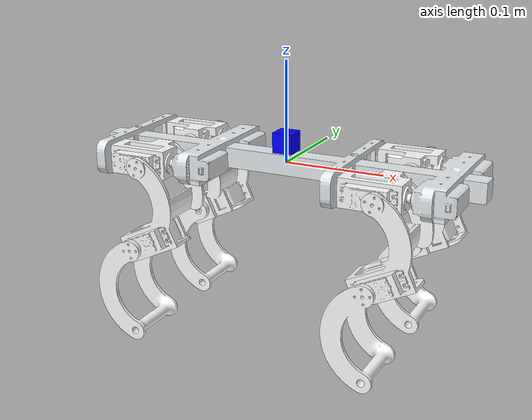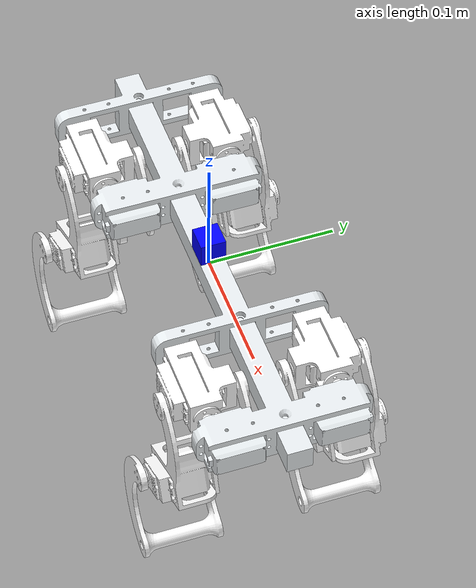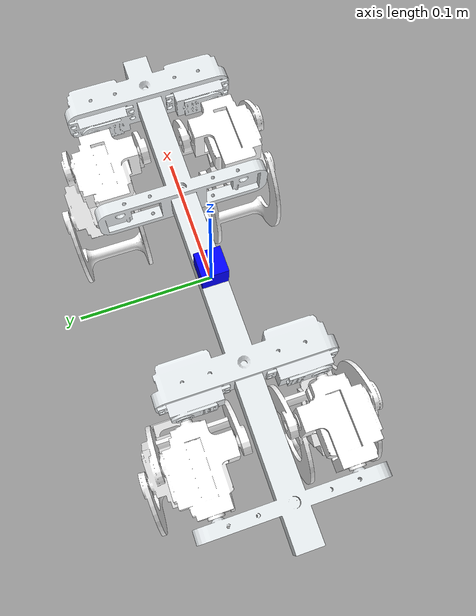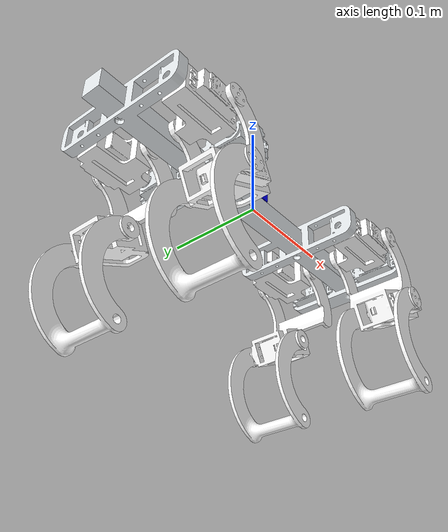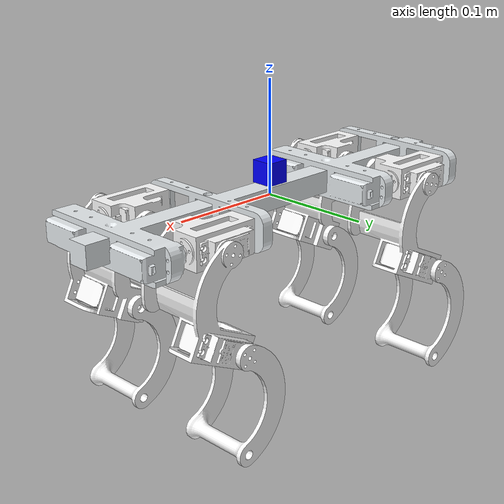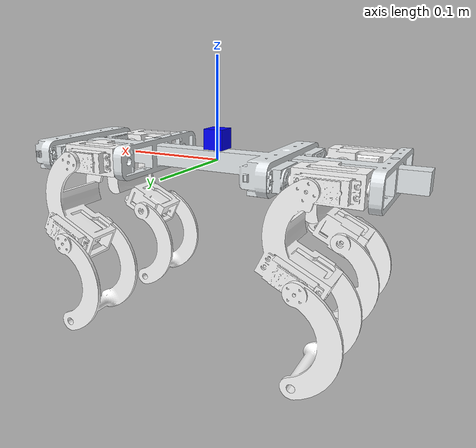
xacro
<?xml version="1.0"?>
<robot xmlns:xacro="http://ros.org/wiki/xacro" name="tinyquad">

  <xacro:include filename="$(find tinyquad_description)/urdf/tinyquad_frame.urdf.xacro" />
  <xacro:include filename="$(find tinyquad_description)/urdf/tinyquad_transmission.xacro" />
  <xacro:include filename="$(find tinyquad_description)/urdf/tinyquad_sensors.urdf.xacro" />
  <xacro:include filename="$(find tinyquad_description)/urdf/tinyquad_wheel.xacro" />

  <xacro:tinyquad />

  <xacro:tinyquad_transmission name="LFS"/>
  <xacro:tinyquad_transmission name="LFU"/>
  <xacro:tinyquad_transmission name="LFL"/>

  <xacro:tinyquad_transmission name="RFS"/>
  <xacro:tinyquad_transmission name="RFU"/>
  <xacro:tinyquad_transmission name="RFL"/>

  <xacro:tinyquad_transmission name="LBS"/>
  <xacro:tinyquad_transmission name="LBU"/>
  <xacro:tinyquad_transmission name="LBL"/>

  <xacro:tinyquad_transmission name="RBS"/>
  <xacro:tinyquad_transmission name="RBU"/>
  <xacro:tinyquad_transmission name="RBL"/>

  <gazebo>
      <plugin name="gazebo_ros_control" filename="libgazebo_ros_control.so">
        <robotNamespace>/tinyquad</robotNamespace>
      </plugin>
  </gazebo>

  <gazebo reference="imu_link">
    <gravity>true</gravity>
    <sensor name="imu_sensor" type="imu">
      <always_on>true</always_on>
      <update_rate>100</update_rate>
      <visualize>true</visualize>
      <plugin filename="libgazebo_ros_imu_sensor.so" name="imu_plugin">
        <topicName>/tinyquad/imu</topicName>
        <bodyName>imu_link</bodyName>
        <updateRateHZ>10.0</updateRateHZ>
        <gaussianNoise>0.0</gaussianNoise>
        <xyzOffset>0 0 0</xyzOffset>
        <rpyOffset>0 0 0</rpyOffset>
        <frameName>imu_link</frameName>
        <initialOrientationAsReference>false</initialOrientationAsReference>
      </plugin>
      <pose>0 0 0 0 0 0</pose>
    </sensor>
  </gazebo>

</robot>

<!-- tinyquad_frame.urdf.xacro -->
<robot xmlns:xacro="http://ros.org/wiki/xacro" >
  <xacro:include filename="$(find tinyquad_description)/urdf/tinyquad_leg.xacro" />

  <xacro:macro name="tinyquad">
    <link name="base_footprint" >
      <origin xyz="0.0103120639734149 3.57028601323102E-12 -5.09987831894361E-06" rpy="0 0 0"/>
    </link>
    <link
      name="base_link">
      <inertial>
        <origin
          xyz="0.0103120639734149 3.57028601323102E-12 -5.09987831894361E-06"
          rpy="0 0 0" />
        <mass
          value="0.673746391598589" />
        <inertia
          ixx="0.000240394302807336"
          ixy="4.72346918508225E-15"
          ixz="1.34348270128604E-09"
          iyy="0.00581273765980766"
          iyz="5.80749294518212E-10"
          izz="0.00598610621622578" />
      </inertial>
      <visual>
        <origin
          xyz="0 0 0"
          rpy="0 0 0" />
        <geometry>
          <mesh
            filename="package://tinyquad_description/meshes/base_link.STL" />
        </geometry>
        <material
          name="">
          <color
            rgba="0.898039215686275 0.917647058823529 0.929411764705882 1" />
        </material>
      </visual>
      <collision>
        <origin
          xyz="0 0 0"
          rpy="0 0 0" />
        <geometry>
          <mesh
            filename="package://tinyquad_description/meshes/base_link.STL" />
        </geometry>
      </collision>
    </link>
    <joint name="base_joint" type="fixed" >
      <origin xyz="0 0 0" rpy="0 0 0" />
      <parent link="base_footprint" />
      <child link="base_link" />
    </joint>

    <xacro:leg pose_prefix="LF" x_mirror="1" y_mirror="1" x_offset="0.15711"/>
    <xacro:leg pose_prefix="RF" x_mirror="1" y_mirror="-1" x_offset="0.15711"/>
    <xacro:leg pose_prefix="LB" x_mirror="1" y_mirror="1" x_offset="-0.082893"/>
    <xacro:leg pose_prefix="RB" x_mirror="1" y_mirror="-1" x_offset="-0.082893"/>

  </xacro:macro>

</robot>

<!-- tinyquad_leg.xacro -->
<robot xmlns:xacro="http://ros.org/wiki/xacro">

  <xacro:macro name="leg" params="pose_prefix x_mirror y_mirror x_offset">
    <link name="${pose_prefix}S_L">
        <inertial>
        <origin
            xyz="-0.046748 ${y_mirror*-0.00092972} 6.6559E-07"
            rpy="0 0 0" />
        <mass
            value="0.057684" />
        <inertia
            ixx="9.7817E-06"
            ixy="${y_mirror*x_mirror*5.1255E-07}"
            ixz="1.4506E-10"
            iyy="1.4627E-05"
            iyz="${y_mirror*-7.3251E-10}"
            izz="1.8457E-05" />
        </inertial>
        <visual>
        <origin
            xyz="0 0 0"
            rpy="0 0 0" />
        <geometry>
            <mesh
            filename="package://tinyquad_description/meshes/${pose_prefix}S_L.STL" />
        </geometry>
        <material
            name="">
            <color
            rgba="1 1 1 1" />
        </material>
        </visual>
        <collision>
        <origin
            xyz="0 0 0"
            rpy="0 0 0" />
        <geometry>
            <mesh
            filename="package://tinyquad_description/meshes/${pose_prefix}S_L.STL" />
        </geometry>
        </collision>
    </link>
    <joint
        name="${pose_prefix}S_J"
        type="revolute">
        <origin
        xyz="${x_offset} ${y_mirror*0.050443} 0"
        rpy="0 0 0" />
        <parent
        link="base_link" />
        <child
        link="${pose_prefix}S_L" />
        <axis
        xyz="1 0 0" />

        <xacro:if value="${y_mirror == 1}">
            <limit
            lower="-0.174533"
            upper="1.5708"
            effort="1.0787315"
            velocity="7.48" />
        </xacro:if>

        <xacro:unless value="${y_mirror == 1}">
            <limit
            lower="-1.5708"
            upper="0.174533"
            effort="1.0787315"
            velocity="7.48" />
        </xacro:unless>

        </joint>
    <link
        name="${pose_prefix}U_L">
        <inertial>
        <origin
            xyz="0.00956780740114901 ${y_mirror*-0.00266058763780398} -0.0619406808382107"
            rpy="0 0 0" />
        <mass
            value="0.0633248586799827" />
        <inertia
            ixx="4.22733905580439E-05"
            ixy="${y_mirror*x_mirror*-3.31314885518861E-08}"
            ixz="-4.35470998953999E-06"
            iyy="3.42993494529219E-05"
            iyz="${y_mirror*4.30780434477683E-06}"
            izz="2.75949415936944E-05" />
        </inertial>
        <visual>
        <origin
            xyz="0 ${y_mirror*0.01375} 0"
            rpy="0 0 0" />
        <geometry>
            <mesh
            filename="package://tinyquad_description/meshes/${pose_prefix}U_L.STL" />
        </geometry>
        <material
            name="">
            <color
            rgba="1 1 1 1" />
        </material>
        </visual>
        <collision>
        <origin
            xyz="0 ${y_mirror*0.01375} 0"
            rpy="0 0 0" />
        <geometry>
            <mesh
            filename="package://tinyquad_description/meshes/${pose_prefix}U_L.STL" />
        </geometry>
        </collision>
    </link>

    <joint
        name="${pose_prefix}U_J"
        type="revolute">
        <origin
        xyz="-0.037107 0 0"
        rpy="0 0 0" />
        <parent
        link="${pose_prefix}S_L" />
        <child
        link="${pose_prefix}U_L" />
        <axis
        xyz="0 1 0" />
        <limit
        lower="0"
        upper="1.4"
        effort="1.0787315"
        velocity="7.48" />
    </joint>

    <link
        name="${pose_prefix}L_L">
        <inertial>
        <origin
            xyz="-0.0126991843001295 ${y_mirror*-0.0150723539446907} -0.0467923508835542"
            rpy="0 0 0" />
        <mass
            value="0.0247326277403109" />
        <inertia
            ixx="4.21435291889056E-05"
            ixy="${y_mirror*x_mirror*4.52141590599905E-07}"
            ixz="${x_mirror*2.40966499667341E-06}"
            iyy="2.82129703259535E-05"
            iyz="${y_mirror*1.66567501013991E-06}"
            izz="2.20436639521685E-05" />
        </inertial>
        <visual>
        <origin
            xyz="0 ${y_mirror*0.0305} 0"
            rpy="0 0 0" />
        <geometry>
            <mesh
            filename="package://tinyquad_description/meshes/${pose_prefix}L_L.STL" />
        </geometry>
        <material
            name="">
            <color
            rgba="1 1 1 1" />
        </material>
        </visual>
        <collision>
        <origin
            xyz="0 ${y_mirror*0.0305} 0"
            rpy="0 0 0" />
        <geometry>
            <mesh
            filename="package://tinyquad_description/meshes/${pose_prefix}L_L.STL" />
        </geometry>
        </collision>
    </link>
    <joint
        name="${pose_prefix}L_J"
        type="revolute">
        <origin
        xyz="0 0 -0.078388"
        rpy="0 0 0" />
        <parent
        link="${pose_prefix}U_L" />
        <child
        link="${pose_prefix}L_L" />
        <axis
        xyz="0 1 0" />
        <limit
        lower="-1.8708"
        upper="1.4"
        effort="1.0787315"
        velocity="7.48" />
    </joint>
    <link
        name="${pose_prefix}C_L">
        <inertial>
        <origin
            xyz="-0.0137408449020781 ${y_mirror*-0.0295642372944374} 0.0344451912255238"
            rpy="0 0 0" />
        <mass
            value="0.0228920746333247" />
        <inertia
            ixx="4.20984399971498E-05"
            ixy="${y_mirror*x_mirror*4.52141590599904E-07}"
            ixz="${x_mirror*2.40966499667341E-06}"
            iyy="2.81277626908271E-05"
            iyz="${y_mirror*1.66567501013991E-06}"
            izz="2.19985747604127E-05" />
        </inertial>
        <collision>
        <origin
            xyz="0 0.0425 0"
            rpy="1.5708 0 0" />
        <geometry>
            <cylinder radius="0.001" length="0.1"/>
        </geometry>
        </collision>
    </link>
    <joint name="${pose_prefix}C_J" type="revolute">
        <origin xyz="2.0629E-05 0 -0.085" rpy="0 0 0" />
        <limit lower="-3.141592"
               upper="3.141592"
               effort="1.0787315"
               velocity="7.48" />
        <parent link="${pose_prefix}L_L" />
        <child link="${pose_prefix}C_L" />
        <axis xyz="0 1 0" />
    </joint>

    <link
    name="${pose_prefix}C2_L">

      <inertial>
        <origin
          xyz="-0.0137408449020781 -0.0295642372944374 0.0344451912255238"
          rpy="0 0 0" />
        <mass
          value="0.0228920746333247" />
        <inertia
          ixx="4.20984399971498E-05"
          ixy="4.52141590599904E-07"
          ixz="2.40966499667341E-06"
          iyy="2.81277626908271E-05"
          iyz="1.66567501013991E-06"
          izz="2.19985747604127E-05" />
      </inertial>
    </link>

    <joint name="${pose_prefix}C2_J" type="revolute">
      <origin xyz="0 0 0" rpy="0 0 0" />
      <limit lower="-3.141592" upper="3.141592" effort="1.0787315" velocity="7.48" />
      <parent link="${pose_prefix}C_L" />
      <child link="${pose_prefix}C2_L" />
      <axis xyz="1 0 0" />
    </joint>

  </xacro:macro>

</robot>

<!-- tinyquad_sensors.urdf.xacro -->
<robot xmlns:xacro="http://ros.org/wiki/xacro" >

    <material name="blue">
        <color rgba= "0 0 1 1"/>
    </material>

    <material name="red">
        <color rgba= "1 0 0 1"/>
    </material>

    <joint name="imu_joint" type="fixed">
        <axis xyz="1 0 0" />
        <origin xyz="0 0 0.021" rpy="0 0 0"/>
        <parent link="base_link"/>
        <child link="imu_link"/>
    </joint>

    <link name="imu_link">
        <collision>
            <origin xyz="0 0 0" rpy="0 0 0"/>
            <geometry>
                <box size="0.02 0.02 0.02"/>
            </geometry>
        </collision>

        <visual>
            <origin xyz="0 0 0" rpy="0 0 0"/>
            <geometry>
                <box size="0.02 0.02 0.02"/>
            </geometry>
            <material name="blue"/>
        </visual>

        <inertial>
            <mass value="1e-5" />
            <origin xyz="0 0 0" rpy="0 0 0"/>
            <inertia ixx="1e-6" ixy="0" ixz="0" iyy="1e-6" iyz="0" izz="1e-6" />
        </inertial>
    </link>

</robot>
